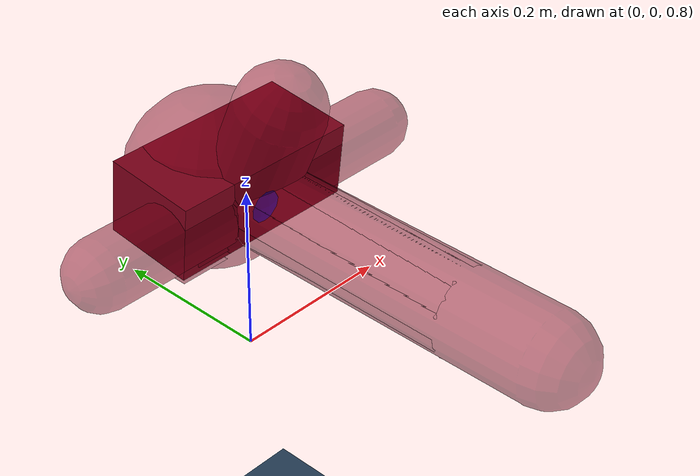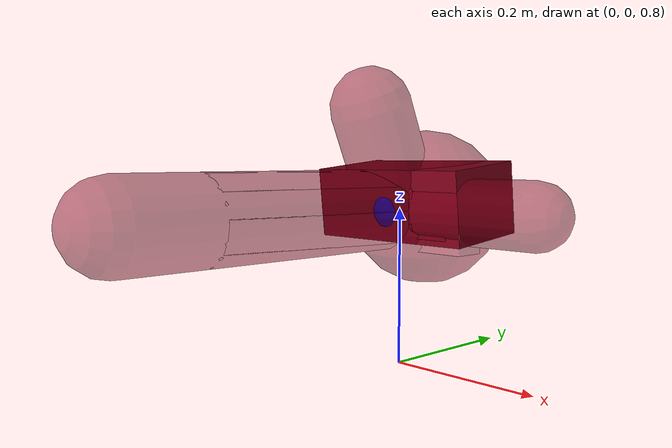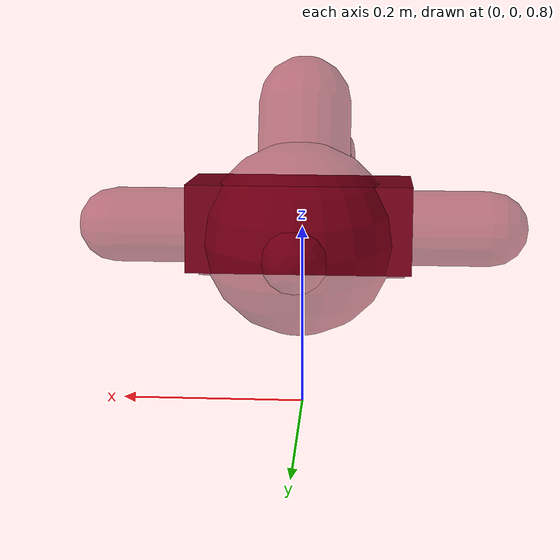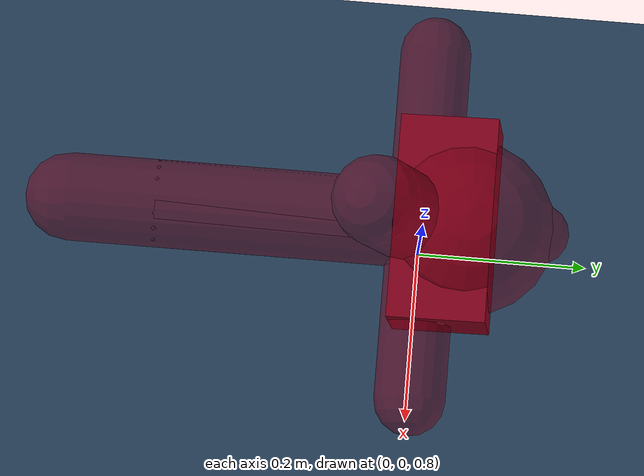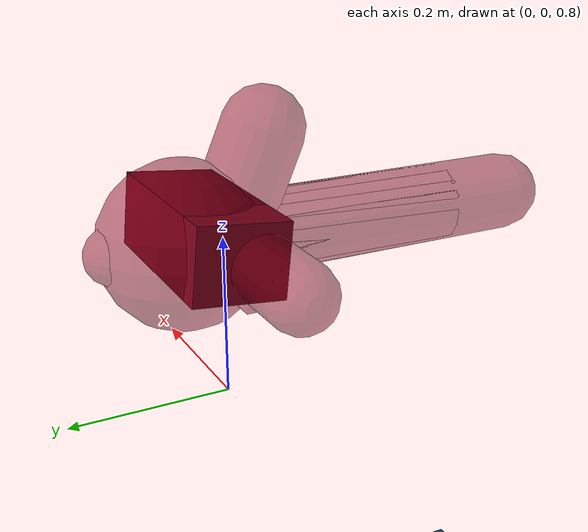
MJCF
<mujoco model="skeleton">
  <compiler angle="radian" meshdir="meshes/"/>

  <worldbody>
    <!-- Hip -->
    <body name="hips" pos="0 0 1">
      <geom name="hips" type="sphere" size="0.05" rgba="0.5  0  0 0.5" contype="0" conaffinity="0"/>
      <joint name="hips_joint" type="free"/>
    </body>

    <body name="hips_mean" pos="0 0 1">
      <geom name="hips_mean" type="sphere" size="0.05" rgba="0.0  0  0.8 0.5" contype="0" conaffinity="0"/>
      <joint name="hips_mean_joint" type="free"/>
    </body>

    <!-- Left Leg -->
    <body name="left_up_leg" pos="0 0 1">
      <geom name="left_up_leg" type="capsule" pos="0 0 0" size="0.05" fromto="0 0 0 0 -0.4 0" rgba="0.5  0  0.1 0.5" contype="0" conaffinity="0"/>
      <joint name="left_up_leg_joint" type="free"/>
    </body>
    <body name="left_leg" pos="0 0 1">
      <geom name="left_leg" type="capsule" pos="0 0 0" size="0.05" fromto="0 0 0 0 -0.3 0" rgba="0.5  0  0.1 0.5" contype="0" conaffinity="0"/>
      <joint name="left_leg_joint" type="free"/>
    </body>
    <body name="left_foot" pos="0 0 1">
      <geom name="left_foot" type="capsule" pos="0 0 0" size="0.05" fromto="0 0 0 0 -0.054 0.125" rgba="0.5  0  0.1 0.5"/>
      <joint name="left_foot_joint" type="free"/>
      <body name = "left_foot_end" pos="0 -0.055 0">
      <geom name="left_foot_end" type="sphere" pos="0 0 0" size="0.04" rgba="0.5  0  0.1 0.5" contype="0" conaffinity="0"/>
      </body>
    </body>
    <body name="left_toe" pos="0 0 1">
      <geom  name="left_toe" type="capsule" pos="0 0 0" size="0.05" fromto="0 0 0 0 0 0.04" rgba="0.5  0  0.1 0.5" contype="0" conaffinity="0"/>
      <joint name="left_toe_joint" type="free"/>
    </body>

    <!-- Right Leg -->
    <body name="right_up_leg" pos="0 0 1">
      <geom name="right_up_leg" type="capsule" pos="0 0 0" size="0.05" fromto="0 0 0 0 -0.4 0" rgba="0.5  0  0.1 0.5" contype="0" conaffinity="0"/>
      <joint name="right_up_leg_joint" type="free"/>
    </body>
    <body name="right_leg" pos="0 0 1">
      <geom name="right_leg" type="capsule" pos="0 0 0" size="0.05" fromto="0 0 0 0 -0.3 0" rgba="0.5  0  0.1 0.5" contype="0" conaffinity="0"/>
      <joint name="right_leg_joint" type="free"/>
    </body>
    <body name="right_foot" pos="0 0 1">
      <geom name="right_foot" type="capsule" pos="0 0 0" size="0.05" fromto="0 0 0 0 -0.054 0.125" rgba="0.5  0  0.1 0.5" contype="0" conaffinity="0"/>
      <joint name="right_foot_joint" type="free"/>
      <body name = "right_foot_end" pos="0 -0.055 0">
      <geom name="right_foot_end" type="sphere" pos="0 0 0" size="0.04" rgba="0.5  0  0.1 0.5" contype="0" conaffinity="0"/>
      </body>
    </body>
    <body name="right_toe" pos="0 0 1">
      <geom name="right_toe" type="capsule" pos="0 0 0" size="0.05" fromto="0 0 0 0 0 0.04" rgba="0.5  0  0.1 0.5" contype="0" conaffinity="0"/>
      <joint name="right_toe_joint" type="free"/>
    </body>

    <!-- Spine -->
    <body name="spine1" pos="0 0 1">
      <geom name="spine1" type="box" pos="0 0.015 0.0" quat="1 0 0 0" size="0.085 0.04 0.03" rgba="0.5  0  0.1 0.5" contype="0" conaffinity="0"/>
      <joint name="spine1_joint" type="free"/>
    </body>
    <body name="spine2" pos="0 0 1">
      <geom name="spine2" type="box" pos="0 0.02 0.005" quat="0.999 0.035 0 0" size="0.095 0.05 0.035" rgba="0.5  0  0.1 0.5" contype="0" conaffinity="0"/>
      <joint name="spine2_joint" type="free"/>
    </body>
    <body name="chest" pos="0 0 1">
      <geom name="chest" type="box" pos="0 0.025 0.01" quat="0.998 0.052 0 0" size="0.115 0.055 0.045" rgba="0.5  0  0.1  1" contype="0" conaffinity="0"/>
      <joint name="chest_joint" type="free"/>
    </body>
    <body name="neck" pos="0 0 1">
      <geom name="neck" type="capsule" pos="0 0 0" size="0.035" fromto="0 0 0 0 0.13 0" rgba="0.5  0  0.1 0.5" contype="0" conaffinity="0"/>
      <joint name="neck_joint" type="free"/>
    </body>
    <body name="head" pos="0 0 1">
      <geom name="head" type="sphere" pos="0 0.05 0" size="0.1" rgba="0.5  0  0.1 0.5" contype="0" conaffinity="0"/>
      <joint name="head_joint" type="free"/>
    </body>

    <body name="shoulder_mean" pos="0 0 1">
      <geom name="shoulder_mean" type="sphere" size="0.05" rgba="0.0  0  0.8 0.5" contype="0" conaffinity="0"/>
      <joint name="shoulder_mean_joint" type="free"/>
    </body>

    <!-- Left arm -->
    <body name="left_shoulder" pos="0 0 1">
      <geom name="left_shoulder" type="capsule" pos="0 0 0" size="0.04" fromto="0 0 0 0.05 0 0" rgba="0.5  0  0.1 0.5" contype="0" conaffinity="0"/>
      <geom name="left_shoulder_s" type="sphere" pos="0 0 0" size="0.035" rgba="0  0  0.8 1" contype="0" conaffinity="0"/>
      <joint name="left_shoulder_joint" type="free"/>
    </body>
    <body name="left_arm" pos="0 0 1">
      <geom name="left_arm" type="capsule" pos="0 0 0" size="0.04" fromto="0 0 0 0.2 0  0" rgba="0.5  0  0.1 0.5" contype="0" conaffinity="0"/>
      <joint name="left_arm_joint" type="free"/>
    </body>
    <body name="left_fore_arm" pos="0 0 1">
      <geom name="left_fore_arm_s" type="sphere" pos="0 0 0" size="0.035" rgba="0  0  0.8 1" contype="0" conaffinity="0"/>
      <geom name="left_fore_arm" type="capsule" pos="0 0 0" size="0.04" fromto="0 0 0 0.2 0  0" rgba="0.5  0  0.1 0.5" contype="0" conaffinity="0"/>
      <joint name="left_fore_arm_joint" type="free"/>
    </body>
    <body name="left_hand" pos="0 0 1">
      <geom name="left_hand" type="box" pos="0.06 0 0" size="0.05 0.02 0.05" rgba="0.5  0  0.1 0.5" contype="0" conaffinity="0"/>
      <joint name="left_hand_joint" type="free"/>
    </body>

    <!-- Right arm -->
    <body name="right_shoulder" pos="0 0 1">
      <geom name="right_shoulder" type="capsule" pos="0 0 0" size="0.04" fromto="0 0 0 -0.05 0 0" rgba="0.5  0  0.1 0.5" contype="0" conaffinity="0"/>
      <joint name="right_shoulder_joint" type="free"/>
    </body>
    <body name="right_arm" pos="0 0 1">
      <geom name="right_arm" type="capsule" pos="0 0 0" size="0.04" fromto="0 0 0 -0.2 0  0" rgba="0.5  0  0.1 0.5" contype="0" conaffinity="0"/>
      <joint name="right_arm_joint" type="free"/>
    </body>
    <body name="right_fore_arm" pos="0 0 1">
      <geom name="right_fore_arm" type="capsule" pos="0 0 0" size="0.04" fromto="0 0 0 -0.2 0  0" rgba="0.5  0  0.1 0.5" contype="0" conaffinity="0"/>
      <joint name="right_fore_arm_joint" type="free"/>
    </body>
    <body name="right_hand" pos="0 0 1">
      <geom name="right_hand" type="box" pos="-0.06 0 0" size="0.05 0.02 0.05" rgba="0.5  0  0.1 0.5" contype="0" conaffinity="0"/>
      <joint name="right_hand_joint" type="free"/>
    </body>

  </worldbody>

  <!-- setup scene -->
  <statistic center="1.0 0.7 1.0" extent="0.8"/>
  <visual>
    <headlight diffuse="0.6 0.6 0.6" ambient="0.1 0.1 0.1" specular="0.9 0.9 0.9"/>
    <rgba haze="0.15 0.25 0.35 1"/>
    <global azimuth="-140" elevation="-20"/>
  </visual>
  <asset>
    <texture type="skybox" builtin="flat" rgb1="0 0 0" rgb2="0 0 0" width="512" height="3072"/>
    <texture type="2d" name="groundplane" builtin="checker" mark="edge" rgb1="0.2 0.3 0.4" rgb2="0.1 0.2 0.3" markrgb="0.8 0.8 0.8" width="300" height="300"/>
    <material name="groundplane" texture="groundplane" texuniform="true" texrepeat="5 5" reflectance="0.2"/>
  </asset>
  <worldbody>
    <light pos="1 0 3.5" dir="0 0 -1" directional="true"/>
    <geom name="floor" size="0 0 0.05" type="plane" material="groundplane" friction="0.75 0.02 0.001"/>
  </worldbody>
</mujoco>
